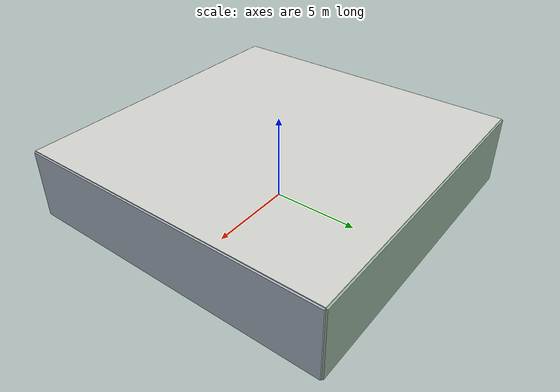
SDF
<sdf version="1.9">
 <world name="xq_p4_external_nav">
  <gravity>0 0 -9.80665</gravity>
  <physics name="xq_p4_1khz" type="ode">
   <max_step_size>0.001</max_step_size>
   <real_time_factor>1.0</real_time_factor>
   <real_time_update_rate>1000</real_time_update_rate>
  </physics>
  <plugin filename="gz-sim-physics-system" name="gz::sim::systems::Physics"/>
  <plugin filename="gz-sim-sensors-system" name="gz::sim::systems::Sensors">
   <render_engine>ogre2</render_engine>
  </plugin>
  <plugin filename="gz-sim-user-commands-system" name="gz::sim::systems::UserCommands"/>
  <plugin filename="gz-sim-scene-broadcaster-system" name="gz::sim::systems::SceneBroadcaster"/>
  <plugin filename="gz-sim-imu-system" name="gz::sim::systems::Imu"/>
  <spherical_coordinates>
   <surface_model>EARTH_WGS84</surface_model>
   <latitude_deg>-35.363262</latitude_deg>
   <longitude_deg>149.165237</longitude_deg>
   <elevation>584</elevation>
   <heading_deg>0</heading_deg>
  </spherical_coordinates>
  <scene><ambient>0.72 0.74 0.78</ambient><background>0.18 0.20 0.24</background><shadows>true</shadows></scene>
  <light type="directional" name="xq_p4_sun">
   <pose>0 0 10 0 0 0</pose>
   <diffuse>0.9 0.9 0.85 1</diffuse>
   <specular>0.2 0.2 0.2 1</specular>
   <direction>-0.4 0.2 -0.9</direction>
  </light>
  <model name="xq_p4_room">
   <static>true</static>
   <link name="room_link">
    <collision name="floor_c">
     <pose>0 0 -0.05 0 0 0</pose>
     <geometry><box><size>18 18 0.1</size></box></geometry>
    </collision>
    <visual name="floor_v">
     <pose>0 0 -0.05 0 0 0</pose>
     <geometry><box><size>18 18 0.1</size></box></geometry>
     <material><ambient>0.34 0.36 0.39 1</ambient><diffuse>0.44 0.46 0.49 1</diffuse></material>
    </visual>
    <collision name="ceiling_c">
     <pose>0 0 4.0 0 0 0</pose>
     <geometry><box><size>18 18 0.1</size></box></geometry>
    </collision>
    <visual name="ceiling_v">
     <pose>0 0 4.0 0 0 0</pose>
     <geometry><box><size>18 18 0.1</size></box></geometry>
     <material><ambient>0.72 0.72 0.70 1</ambient><diffuse>0.82 0.82 0.80 1</diffuse></material>
    </visual>
    <collision name="wall_w_c">
     <pose>-9 0 2 0 0 0</pose>
     <geometry><box><size>0.2 18 4</size></box></geometry>
    </collision>
    <visual name="wall_w_v">
     <pose>-9 0 2 0 0 0</pose>
     <geometry><box><size>0.2 18 4</size></box></geometry>
     <material><ambient>0.58 0.63 0.68 1</ambient><diffuse>0.68 0.73 0.78 1</diffuse></material>
    </visual>
    <collision name="wall_e_c">
     <pose>9 0 2 0 0 0</pose>
     <geometry><box><size>0.2 18 4</size></box></geometry>
    </collision>
    <visual name="wall_e_v">
     <pose>9 0 2 0 0 0</pose>
     <geometry><box><size>0.2 18 4</size></box></geometry>
     <material><ambient>0.58 0.63 0.68 1</ambient><diffuse>0.68 0.73 0.78 1</diffuse></material>
    </visual>
    <collision name="wall_s_c">
     <pose>0 -9 2 0 0 0</pose>
     <geometry><box><size>18 0.2 4</size></box></geometry>
    </collision>
    <visual name="wall_s_v">
     <pose>0 -9 2 0 0 0</pose>
     <geometry><box><size>18 0.2 4</size></box></geometry>
     <material><ambient>0.61 0.57 0.46 1</ambient><diffuse>0.72 0.68 0.56 1</diffuse></material>
    </visual>
    <collision name="wall_n_c">
     <pose>0 9 2 0 0 0</pose>
     <geometry><box><size>18 0.2 4</size></box></geometry>
    </collision>
    <visual name="wall_n_v">
     <pose>0 9 2 0 0 0</pose>
     <geometry><box><size>18 0.2 4</size></box></geometry>
     <material><ambient>0.50 0.59 0.52 1</ambient><diffuse>0.60 0.70 0.62 1</diffuse></material>
    </visual>
    <collision name="column_nw_c">
     <pose>-5 5 1.5 0 0 0</pose>
     <geometry><cylinder><radius>0.35</radius><length>3</length></cylinder></geometry>
    </collision>
    <visual name="column_nw_v">
     <pose>-5 5 1.5 0 0 0</pose>
     <geometry><cylinder><radius>0.35</radius><length>3</length></cylinder></geometry>
     <material><ambient>0.75 0.35 0.10 1</ambient><diffuse>0.85 0.45 0.14 1</diffuse></material>
    </visual>
    <collision name="column_se_c">
     <pose>5 -5 1.5 0 0 0</pose>
     <geometry><cylinder><radius>0.28</radius><length>3</length></cylinder></geometry>
    </collision>
    <visual name="column_se_v">
     <pose>5 -5 1.5 0 0 0</pose>
     <geometry><cylinder><radius>0.28</radius><length>3</length></cylinder></geometry>
     <material><ambient>0.15 0.48 0.68 1</ambient><diffuse>0.20 0.58 0.78 1</diffuse></material>
    </visual>
    <collision name="cabinet_ne_c">
     <pose>5.8 4.4 1.0 0 0 0.25</pose>
     <geometry><box><size>1.2 2.0 2.0</size></box></geometry>
    </collision>
    <visual name="cabinet_ne_v">
     <pose>5.8 4.4 1.0 0 0 0.25</pose>
     <geometry><box><size>1.2 2.0 2.0</size></box></geometry>
     <material><ambient>0.47 0.28 0.52 1</ambient><diffuse>0.57 0.36 0.62 1</diffuse></material>
    </visual>
    <collision name="crate_sw_c">
     <pose>-5.6 -4.7 0.6 0.1 0.05 -0.35</pose>
     <geometry><box><size>1.1 1.4 1.2</size></box></geometry>
    </collision>
    <visual name="crate_sw_v">
     <pose>-5.6 -4.7 0.6 0.1 0.05 -0.35</pose>
     <geometry><box><size>1.1 1.4 1.2</size></box></geometry>
     <material><ambient>0.48 0.23 0.08 1</ambient><diffuse>0.62 0.31 0.11 1</diffuse></material>
    </visual>
   </link>
  </model>
 </world>
</sdf>
